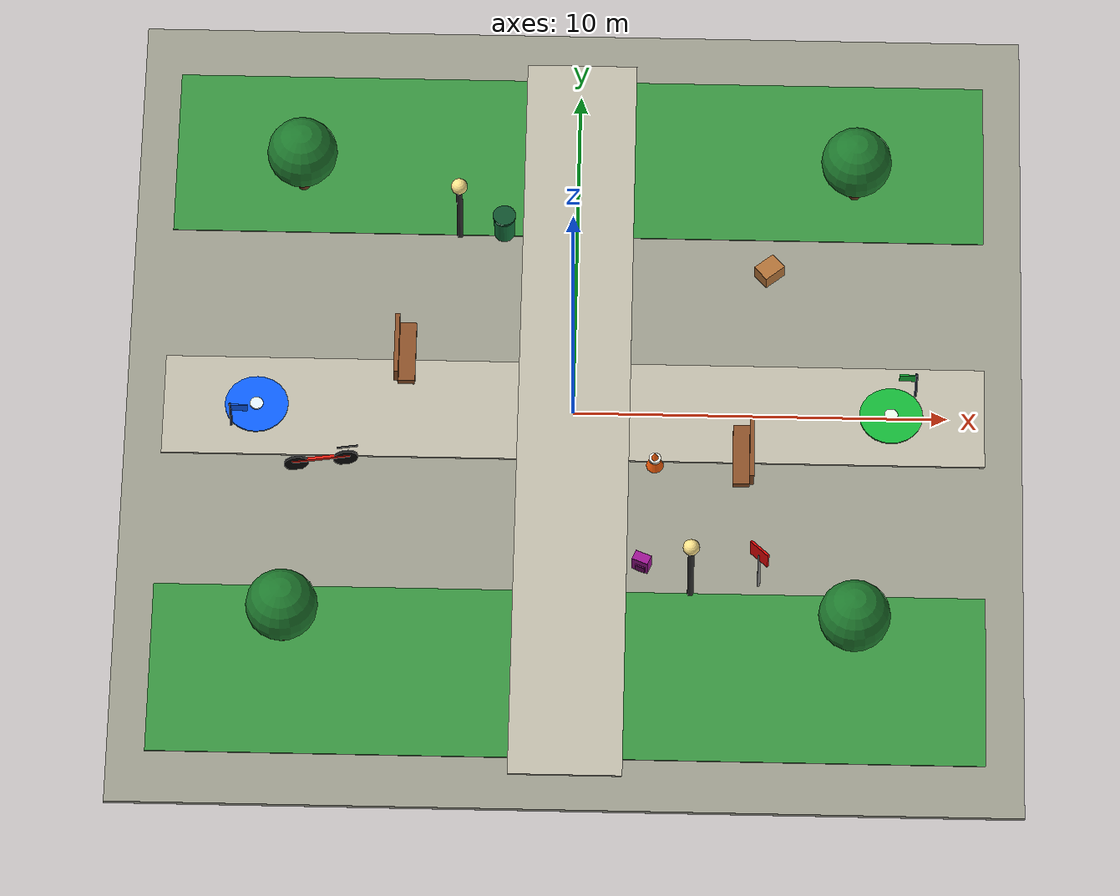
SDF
<sdf version="1.9">
 <world name="praca_ao_ar_livre">
  <gravity>0 0 -9.81</gravity>
  <physics name="default_physics" type="ignored">
   <max_step_size>0.001</max_step_size>
   <real_time_factor>1.0</real_time_factor>
  </physics>
  <plugin filename="gz-sim-physics-system" name="gz::sim::systems::Physics"/>
  <plugin filename="gz-sim-user-commands-system" name="gz::sim::systems::UserCommands"/>
  <plugin filename="gz-sim-scene-broadcaster-system" name="gz::sim::systems::SceneBroadcaster"/>
  <scene>
   <ambient>0.65 0.70 0.78 1</ambient>
   <background>0.52 0.76 0.92 1</background>
   <shadows>true</shadows>
  </scene>
  <light name="sun" type="directional">
   <pose>-4 -6 10 0 0 0</pose>
   <diffuse>0.95 0.88 0.72 1</diffuse>
   <specular>0.35 0.35 0.30 1</specular>
   <attenuation>
    <range>1000</range>
    <constant>0.9</constant>
    <linear>0.01</linear>
    <quadratic>0.001</quadratic>
   </attenuation>
   <direction>0.4 0.55 -0.75</direction>
  </light>
  <model name="piso_da_praca">
   <static>true</static>
   <link name="link">
    <collision name="collision"><geometry><box><size>24 24 0.10</size></box></geometry></collision>
    <visual name="visual">
     <geometry><box><size>24 24 0.10</size></box></geometry>
     <material><ambient>0.55 0.55 0.50 1</ambient><diffuse>0.62 0.62 0.56 1</diffuse></material>
    </visual>
   </link>
  </model>
  <model name="gramado_norte">
   <static>true</static>
   <pose>0 8.0 0.055 0 0 0</pose>
   <link name="link">
    <collision name="collision"><geometry><box><size>22 5 0.04</size></box></geometry></collision>
    <visual name="visual">
     <geometry><box><size>22 5 0.04</size></box></geometry>
     <material><ambient>0.18 0.48 0.22 1</ambient><diffuse>0.22 0.58 0.25 1</diffuse></material>
    </visual>
   </link>
  </model>
  <model name="gramado_sul">
   <static>true</static>
   <pose>0 -8.0 0.055 0 0 0</pose>
   <link name="link">
    <collision name="collision"><geometry><box><size>22 5 0.04</size></box></geometry></collision>
    <visual name="visual">
     <geometry><box><size>22 5 0.04</size></box></geometry>
     <material><ambient>0.18 0.48 0.22 1</ambient><diffuse>0.22 0.58 0.25 1</diffuse></material>
    </visual>
   </link>
  </model>
  <model name="caminho_central_x">
   <static>true</static>
   <pose>0 0 0.08 0 0 0</pose>
   <link name="link">
    <collision name="collision"><geometry><box><size>22 3.0 0.05</size></box></geometry></collision>
    <visual name="visual">
     <geometry><box><size>22 3.0 0.05</size></box></geometry>
     <material><ambient>0.68 0.66 0.60 1</ambient><diffuse>0.76 0.74 0.67 1</diffuse></material>
    </visual>
   </link>
  </model>
  <model name="caminho_central_y">
   <static>true</static>
   <pose>0 0 0.09 0 0 0</pose>
   <link name="link">
    <collision name="collision"><geometry><box><size>3.0 22 0.05</size></box></geometry></collision>
    <visual name="visual">
     <geometry><box><size>3.0 22 0.05</size></box></geometry>
     <material><ambient>0.68 0.66 0.60 1</ambient><diffuse>0.76 0.74 0.67 1</diffuse></material>
    </visual>
   </link>
  </model>
  <model name="ponto_inicial_robo">
   <static>true</static>
   <pose>-8.5 0 0.16 0 0 0</pose>
   <link name="link">
    <visual name="area_inicio_visual">
     <geometry><cylinder><radius>0.85</radius><length>0.04</length></cylinder></geometry>
     <material><ambient>0.02 0.25 0.85 1</ambient><diffuse>0.05 0.38 1.0 1</diffuse></material>
    </visual>
    <visual name="centro_inicio_visual">
     <pose>0 0 0.04 0 0 0</pose>
     <geometry><cylinder><radius>0.18</radius><length>0.06</length></cylinder></geometry>
     <material><ambient>0.80 0.92 1.0 1</ambient><diffuse>0.90 0.96 1.0 1</diffuse></material>
    </visual>
    <visual name="poste_inicio_visual">
     <pose>-0.65 -0.65 0.55 0 0 0</pose>
     <geometry><cylinder><radius>0.035</radius><length>1.10</length></cylinder></geometry>
     <material><ambient>0.06 0.08 0.12 1</ambient><diffuse>0.08 0.10 0.16 1</diffuse></material>
    </visual>
    <visual name="bandeira_inicio_visual">
     <pose>-0.42 -0.65 0.92 0 0 0</pose>
     <geometry><box><size>0.46 0.04 0.28</size></box></geometry>
     <material><ambient>0.02 0.25 0.85 1</ambient><diffuse>0.05 0.38 1.0 1</diffuse></material>
    </visual>
   </link>
  </model>
  <model name="ponto_final_robo">
   <static>true</static>
   <pose>8.5 0 0.16 0 0 0</pose>
   <link name="link">
    <visual name="area_final_visual">
     <geometry><cylinder><radius>0.85</radius><length>0.04</length></cylinder></geometry>
     <material><ambient>0.05 0.55 0.16 1</ambient><diffuse>0.08 0.72 0.22 1</diffuse></material>
    </visual>
    <visual name="centro_final_visual">
     <pose>0 0 0.04 0 0 0</pose>
     <geometry><cylinder><radius>0.18</radius><length>0.06</length></cylinder></geometry>
     <material><ambient>0.85 1.0 0.86 1</ambient><diffuse>0.92 1.0 0.92 1</diffuse></material>
    </visual>
    <visual name="poste_final_visual">
     <pose>0.65 0.65 0.55 0 0 0</pose>
     <geometry><cylinder><radius>0.035</radius><length>1.10</length></cylinder></geometry>
     <material><ambient>0.06 0.08 0.12 1</ambient><diffuse>0.08 0.10 0.16 1</diffuse></material>
    </visual>
    <visual name="bandeira_final_visual">
     <pose>0.42 0.65 0.92 0 0 0</pose>
     <geometry><box><size>0.46 0.04 0.28</size></box></geometry>
     <material><ambient>0.05 0.55 0.16 1</ambient><diffuse>0.08 0.72 0.22 1</diffuse></material>
    </visual>
   </link>
  </model>
  <model name="banco_oeste">
   <static>true</static>
   <pose>-4.5 1.5 0.45 0 0 1.5708</pose>
   <link name="link">
    <collision name="assento_collision"><geometry><box><size>1.8 0.45 0.18</size></box></geometry></collision>
    <visual name="assento_visual">
     <geometry><box><size>1.8 0.45 0.18</size></box></geometry>
     <material><ambient>0.45 0.25 0.12 1</ambient><diffuse>0.55 0.32 0.16 1</diffuse></material>
    </visual>
    <collision name="encosto_collision">
     <pose>0 0.28 0.32 0 0 0</pose>
     <geometry><box><size>1.8 0.12 0.50</size></box></geometry>
    </collision>
    <visual name="encosto_visual">
     <pose>0 0.28 0.32 0 0 0</pose>
     <geometry><box><size>1.8 0.12 0.50</size></box></geometry>
     <material><ambient>0.45 0.25 0.12 1</ambient><diffuse>0.55 0.32 0.16 1</diffuse></material>
    </visual>
   </link>
  </model>
  <model name="banco_leste">
   <static>true</static>
   <pose>4.5 -1.5 0.45 0 0 -1.5708</pose>
   <link name="link">
    <collision name="assento_collision"><geometry><box><size>1.8 0.45 0.18</size></box></geometry></collision>
    <visual name="assento_visual">
     <geometry><box><size>1.8 0.45 0.18</size></box></geometry>
     <material><ambient>0.45 0.25 0.12 1</ambient><diffuse>0.55 0.32 0.16 1</diffuse></material>
    </visual>
    <collision name="encosto_collision">
     <pose>0 0.28 0.32 0 0 0</pose>
     <geometry><box><size>1.8 0.12 0.50</size></box></geometry>
    </collision>
    <visual name="encosto_visual">
     <pose>0 0.28 0.32 0 0 0</pose>
     <geometry><box><size>1.8 0.12 0.50</size></box></geometry>
     <material><ambient>0.45 0.25 0.12 1</ambient><diffuse>0.55 0.32 0.16 1</diffuse></material>
    </visual>
   </link>
  </model>
  <model name="arvore_noroeste">
   <static>true</static>
   <pose>-7.5 7.0 0 0 0 0</pose>
   <link name="link">
    <collision name="tronco_collision">
     <pose>0 0 0.75 0 0 0</pose>
     <geometry><cylinder><radius>0.16</radius><length>1.5</length></cylinder></geometry>
    </collision>
    <visual name="tronco_visual">
     <pose>0 0 0.75 0 0 0</pose>
     <geometry><cylinder><radius>0.16</radius><length>1.5</length></cylinder></geometry>
     <material><ambient>0.34 0.18 0.08 1</ambient><diffuse>0.42 0.24 0.12 1</diffuse></material>
    </visual>
    <visual name="copa_visual">
     <pose>0 0 1.75 0 0 0</pose>
     <geometry><sphere><radius>0.95</radius></sphere></geometry>
     <material><ambient>0.08 0.34 0.12 1</ambient><diffuse>0.12 0.48 0.18 1</diffuse></material>
    </visual>
   </link>
  </model>
  <model name="arvore_nordeste">
   <static>true</static>
   <pose>7.5 7.0 0 0 0 0</pose>
   <link name="link">
    <collision name="tronco_collision">
     <pose>0 0 0.75 0 0 0</pose>
     <geometry><cylinder><radius>0.16</radius><length>1.5</length></cylinder></geometry>
    </collision>
    <visual name="tronco_visual">
     <pose>0 0 0.75 0 0 0</pose>
     <geometry><cylinder><radius>0.16</radius><length>1.5</length></cylinder></geometry>
     <material><ambient>0.34 0.18 0.08 1</ambient><diffuse>0.42 0.24 0.12 1</diffuse></material>
    </visual>
    <visual name="copa_visual">
     <pose>0 0 1.75 0 0 0</pose>
     <geometry><sphere><radius>0.95</radius></sphere></geometry>
     <material><ambient>0.08 0.34 0.12 1</ambient><diffuse>0.12 0.48 0.18 1</diffuse></material>
    </visual>
   </link>
  </model>
  <model name="arvore_sudoeste">
   <static>true</static>
   <pose>-7.5 -7.0 0 0 0 0</pose>
   <link name="link">
    <collision name="tronco_collision">
     <pose>0 0 0.75 0 0 0</pose>
     <geometry><cylinder><radius>0.16</radius><length>1.5</length></cylinder></geometry>
    </collision>
    <visual name="tronco_visual">
     <pose>0 0 0.75 0 0 0</pose>
     <geometry><cylinder><radius>0.16</radius><length>1.5</length></cylinder></geometry>
     <material><ambient>0.34 0.18 0.08 1</ambient><diffuse>0.42 0.24 0.12 1</diffuse></material>
    </visual>
    <visual name="copa_visual">
     <pose>0 0 1.75 0 0 0</pose>
     <geometry><sphere><radius>0.95</radius></sphere></geometry>
     <material><ambient>0.08 0.34 0.12 1</ambient><diffuse>0.12 0.48 0.18 1</diffuse></material>
    </visual>
   </link>
  </model>
  <model name="arvore_sudeste">
   <static>true</static>
   <pose>7.5 -7.0 0 0 0 0</pose>
   <link name="link">
    <collision name="tronco_collision">
     <pose>0 0 0.75 0 0 0</pose>
     <geometry><cylinder><radius>0.16</radius><length>1.5</length></cylinder></geometry>
    </collision>
    <visual name="tronco_visual">
     <pose>0 0 0.75 0 0 0</pose>
     <geometry><cylinder><radius>0.16</radius><length>1.5</length></cylinder></geometry>
     <material><ambient>0.34 0.18 0.08 1</ambient><diffuse>0.42 0.24 0.12 1</diffuse></material>
    </visual>
    <visual name="copa_visual">
     <pose>0 0 1.75 0 0 0</pose>
     <geometry><sphere><radius>0.95</radius></sphere></geometry>
     <material><ambient>0.08 0.34 0.12 1</ambient><diffuse>0.12 0.48 0.18 1</diffuse></material>
    </visual>
   </link>
  </model>
  <model name="poste_norte">
   <static>true</static>
   <pose>-3.2 5.5 0 0 0 0</pose>
   <link name="link">
    <collision name="poste_collision">
     <pose>0 0 1.2 0 0 0</pose>
     <geometry><cylinder><radius>0.08</radius><length>2.4</length></cylinder></geometry>
    </collision>
    <visual name="poste_visual">
     <pose>0 0 1.2 0 0 0</pose>
     <geometry><cylinder><radius>0.08</radius><length>2.4</length></cylinder></geometry>
     <material><ambient>0.12 0.12 0.12 1</ambient><diffuse>0.18 0.18 0.18 1</diffuse></material>
    </visual>
    <visual name="lampada_visual">
     <pose>0 0 2.55 0 0 0</pose>
     <geometry><sphere><radius>0.22</radius></sphere></geometry>
     <material><ambient>1.0 0.86 0.45 1</ambient><diffuse>1.0 0.90 0.55 1</diffuse></material>
    </visual>
   </link>
  </model>
  <model name="poste_sul">
   <static>true</static>
   <pose>3.2 -5.5 0 0 0 0</pose>
   <link name="link">
    <collision name="poste_collision">
     <pose>0 0 1.2 0 0 0</pose>
     <geometry><cylinder><radius>0.08</radius><length>2.4</length></cylinder></geometry>
    </collision>
    <visual name="poste_visual">
     <pose>0 0 1.2 0 0 0</pose>
     <geometry><cylinder><radius>0.08</radius><length>2.4</length></cylinder></geometry>
     <material><ambient>0.12 0.12 0.12 1</ambient><diffuse>0.18 0.18 0.18 1</diffuse></material>
    </visual>
    <visual name="lampada_visual">
     <pose>0 0 2.55 0 0 0</pose>
     <geometry><sphere><radius>0.22</radius></sphere></geometry>
     <material><ambient>1.0 0.86 0.45 1</ambient><diffuse>1.0 0.90 0.55 1</diffuse></material>
    </visual>
   </link>
  </model>
  <model name="bicicleta">
   <static>true</static>
   <pose>-6.7 -1.8 0.45 0 0 0.15</pose>
   <link name="link">
    <collision name="quadro_collision"><geometry><box><size>1.55 0.18 0.75</size></box></geometry></collision>
    <visual name="quadro_visual">
     <geometry><box><size>1.55 0.08 0.08</size></box></geometry>
     <material><ambient>0.80 0.08 0.04 1</ambient><diffuse>0.95 0.12 0.06 1</diffuse></material>
    </visual>
    <visual name="roda_dianteira_visual">
     <pose>0.66 0 -0.10 1.5708 0 0</pose>
     <geometry><cylinder><radius>0.33</radius><length>0.06</length></cylinder></geometry>
     <material><ambient>0.02 0.02 0.02 1</ambient><diffuse>0.03 0.03 0.03 1</diffuse></material>
    </visual>
    <visual name="roda_traseira_visual">
     <pose>-0.66 0 -0.10 1.5708 0 0</pose>
     <geometry><cylinder><radius>0.33</radius><length>0.06</length></cylinder></geometry>
     <material><ambient>0.02 0.02 0.02 1</ambient><diffuse>0.03 0.03 0.03 1</diffuse></material>
    </visual>
    <visual name="guidom_visual">
     <pose>0.72 0 0.44 0 1.5708 0</pose>
     <geometry><cylinder><radius>0.025</radius><length>0.55</length></cylinder></geometry>
     <material><ambient>0.05 0.05 0.05 1</ambient><diffuse>0.08 0.08 0.08 1</diffuse></material>
    </visual>
   </link>
  </model>
  <model name="lixeira">
   <static>true</static>
   <pose>-2.0 5.6 0.45 0 0 0</pose>
   <link name="link">
    <collision name="corpo_collision">
     <geometry><cylinder><radius>0.28</radius><length>0.85</length></cylinder></geometry>
    </collision>
    <visual name="corpo_visual">
     <geometry><cylinder><radius>0.28</radius><length>0.85</length></cylinder></geometry>
     <material><ambient>0.05 0.33 0.18 1</ambient><diffuse>0.08 0.45 0.24 1</diffuse></material>
    </visual>
    <visual name="tampa_visual">
     <pose>0 0 0.47 0 0 0</pose>
     <geometry><cylinder><radius>0.31</radius><length>0.08</length></cylinder></geometry>
     <material><ambient>0.04 0.22 0.13 1</ambient><diffuse>0.06 0.32 0.18 1</diffuse></material>
    </visual>
   </link>
  </model>
  <model name="mochila">
   <static>true</static>
   <pose>1.9 -4.7 0.28 0 0 -0.4</pose>
   <link name="link">
    <collision name="corpo_collision"><geometry><box><size>0.45 0.28 0.55</size></box></geometry></collision>
    <visual name="corpo_visual">
     <geometry><box><size>0.45 0.28 0.55</size></box></geometry>
     <material><ambient>0.45 0.04 0.42 1</ambient><diffuse>0.62 0.08 0.58 1</diffuse></material>
    </visual>
    <visual name="bolso_visual">
     <pose>0.02 -0.16 -0.06 0 0 0</pose>
     <geometry><box><size>0.28 0.04 0.24</size></box></geometry>
     <material><ambient>0.30 0.03 0.28 1</ambient><diffuse>0.45 0.05 0.42 1</diffuse></material>
    </visual>
   </link>
  </model>
  <model name="caixa_entrega">
   <static>true</static>
   <pose>5.2 4.4 0.28 0 0 0.7</pose>
   <link name="link">
    <collision name="caixa_collision"><geometry><box><size>0.65 0.50 0.45</size></box></geometry></collision>
    <visual name="caixa_visual">
     <geometry><box><size>0.65 0.50 0.45</size></box></geometry>
     <material><ambient>0.58 0.36 0.16 1</ambient><diffuse>0.70 0.45 0.22 1</diffuse></material>
    </visual>
   </link>
  </model>
  <model name="cone_transito">
   <static>true</static>
   <pose>2.2 -1.6 0.36 0 0 0</pose>
   <link name="link">
    <collision name="cone_collision">
     <geometry><cylinder><radius>0.22</radius><length>0.70</length></cylinder></geometry>
    </collision>
    <visual name="cone_visual">
     <geometry><cone><radius>0.25</radius><length>0.72</length></cone></geometry>
     <material><ambient>0.95 0.28 0.02 1</ambient><diffuse>1.0 0.38 0.04 1</diffuse></material>
    </visual>
    <visual name="faixa_visual">
     <pose>0 0 0.05 0 0 0</pose>
     <geometry><cylinder><radius>0.16</radius><length>0.08</length></cylinder></geometry>
     <material><ambient>0.95 0.95 0.90 1</ambient><diffuse>1.0 1.0 0.95 1</diffuse></material>
    </visual>
   </link>
  </model>
  <model name="placa_pare">
   <static>true</static>
   <pose>5.0 -5.2 0 0 0 -0.75</pose>
   <link name="link">
    <collision name="poste_collision">
     <pose>0 0 0.85 0 0 0</pose>
     <geometry><cylinder><radius>0.04</radius><length>1.7</length></cylinder></geometry>
    </collision>
    <visual name="poste_visual">
     <pose>0 0 0.85 0 0 0</pose>
     <geometry><cylinder><radius>0.04</radius><length>1.7</length></cylinder></geometry>
     <material><ambient>0.45 0.45 0.45 1</ambient><diffuse>0.55 0.55 0.55 1</diffuse></material>
    </visual>
    <visual name="placa_visual">
     <pose>0 0 1.75 0 0 0</pose>
     <geometry><box><size>0.62 0.06 0.62</size></box></geometry>
     <material><ambient>0.75 0.02 0.02 1</ambient><diffuse>0.95 0.03 0.03 1</diffuse></material>
    </visual>
   </link>
  </model>
 </world>
</sdf>
